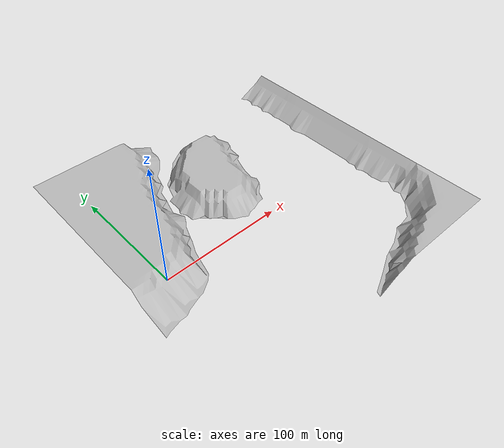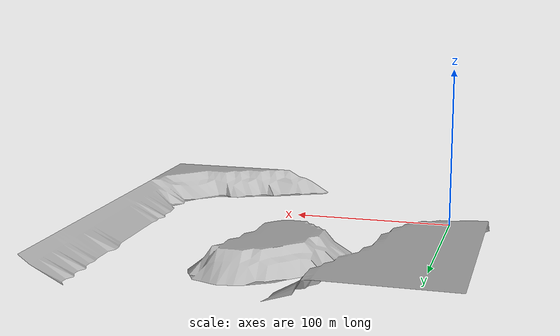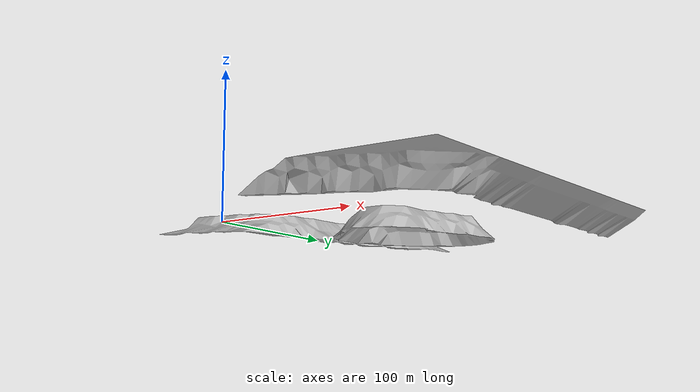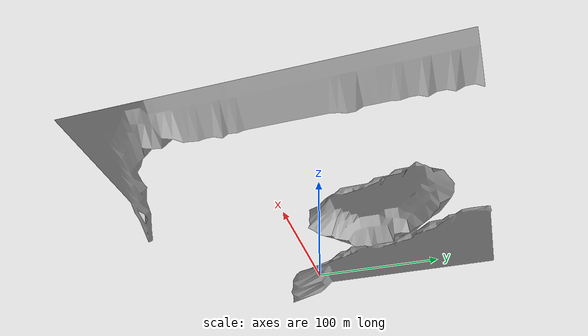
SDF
<?xml version="1.0"?>
<sdf version="1.6">
  <model name="cmra_terrain">
    <static>true</static>

    <link name="terrain_link">
      <collision name="terrain_collision">
        <geometry>
          <mesh>
            <uri>model://cmra_models/terrain/terrain.obj</uri>
            <scale>1 1 1</scale>
          </mesh>
        </geometry>
      </collision>

      <visual name="terrain_visual">
        <geometry>
          <mesh>
            <uri>model://cmra_models/terrain/terrain.obj</uri>
            <scale>1 1 1</scale>
          </mesh>
        </geometry>
      </visual>
    </link>
  </model>
</sdf>
